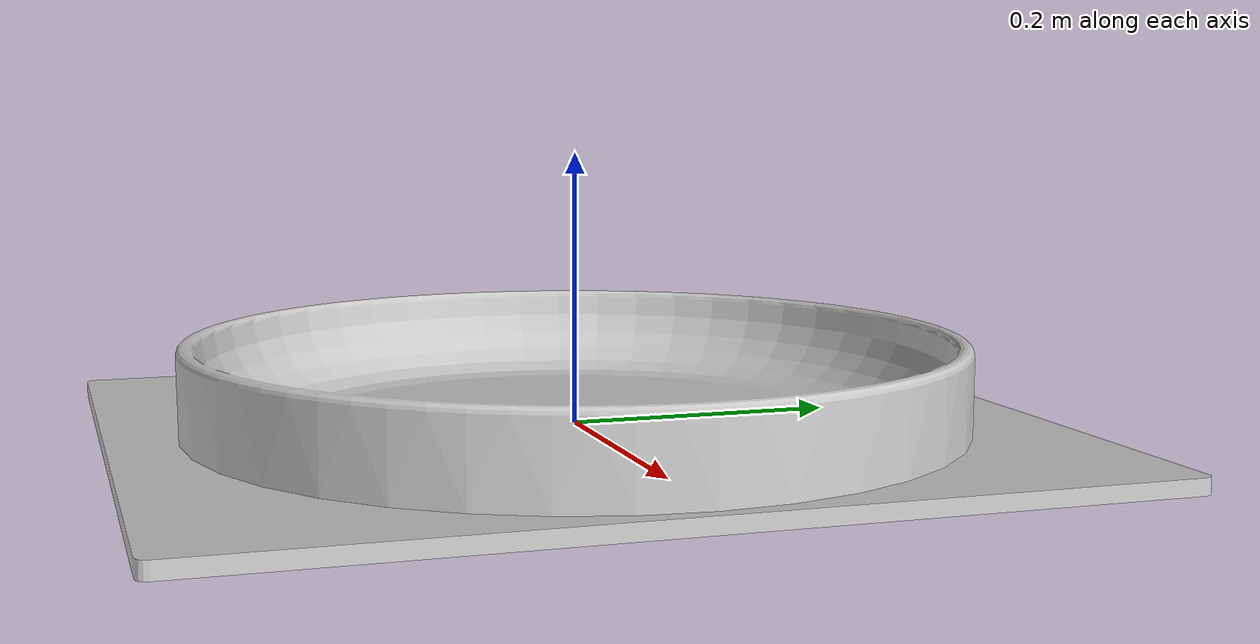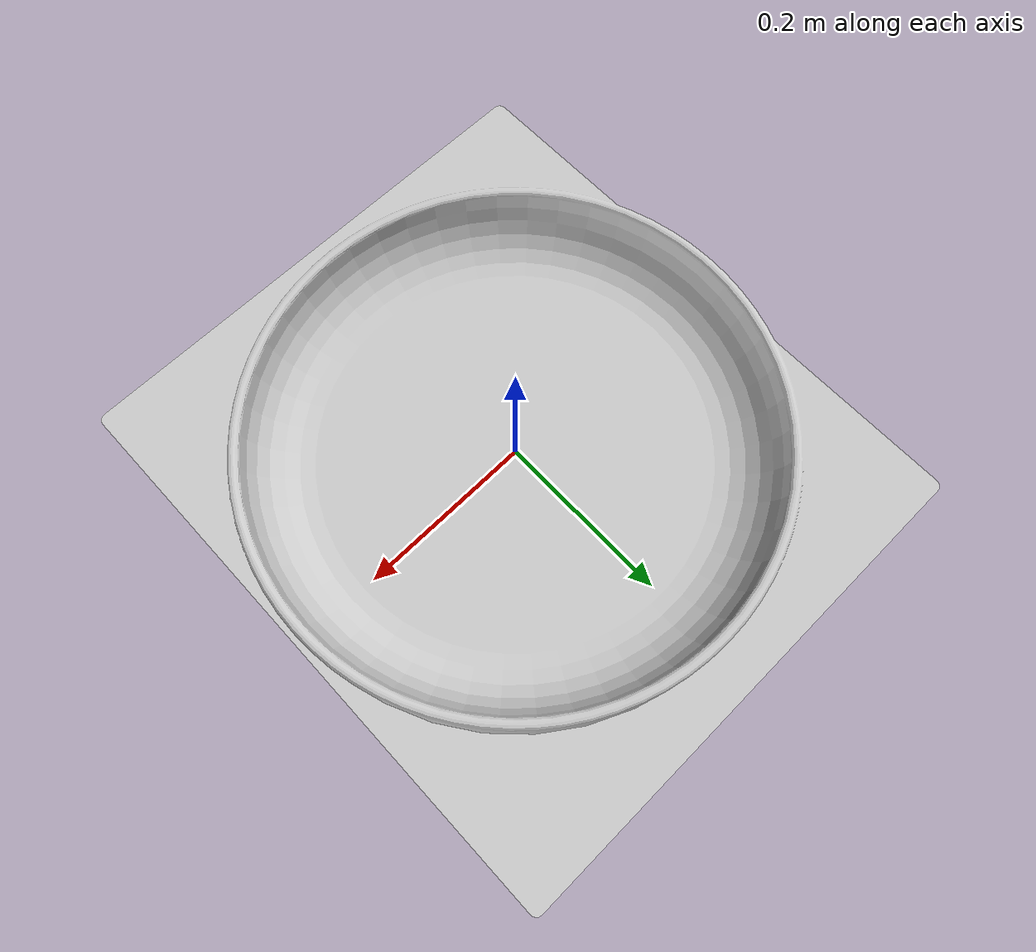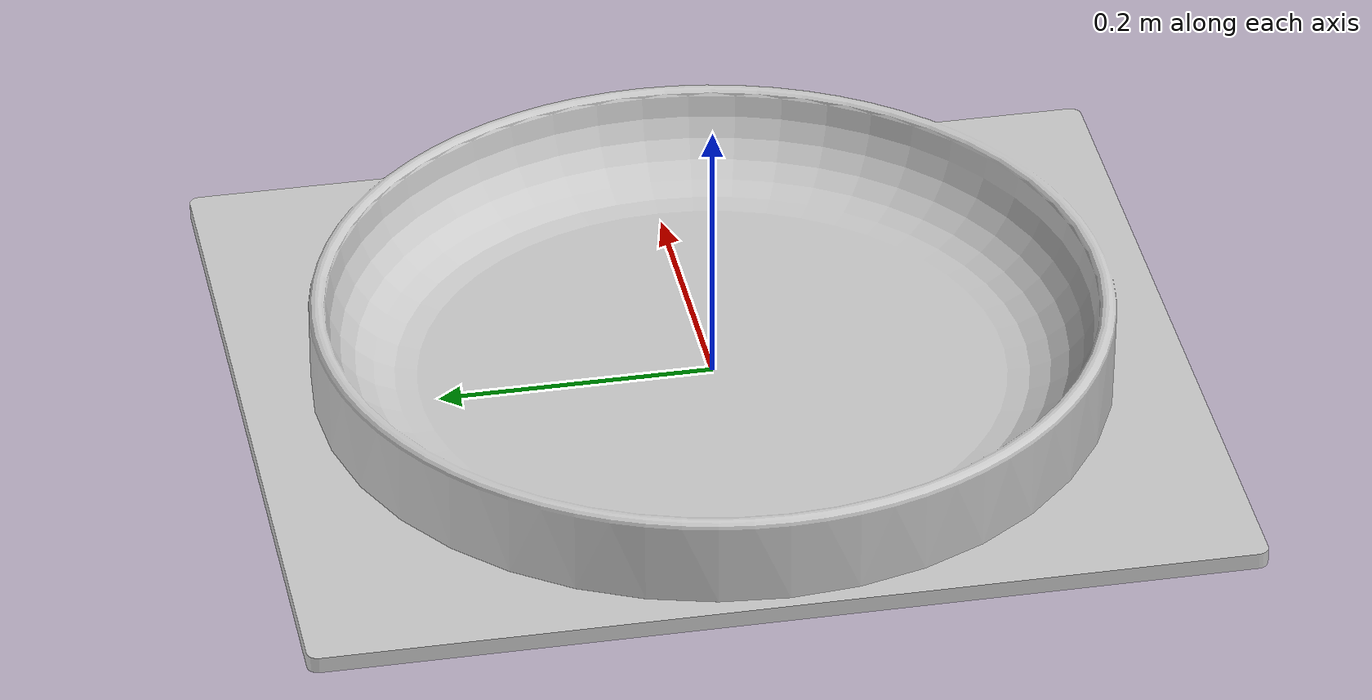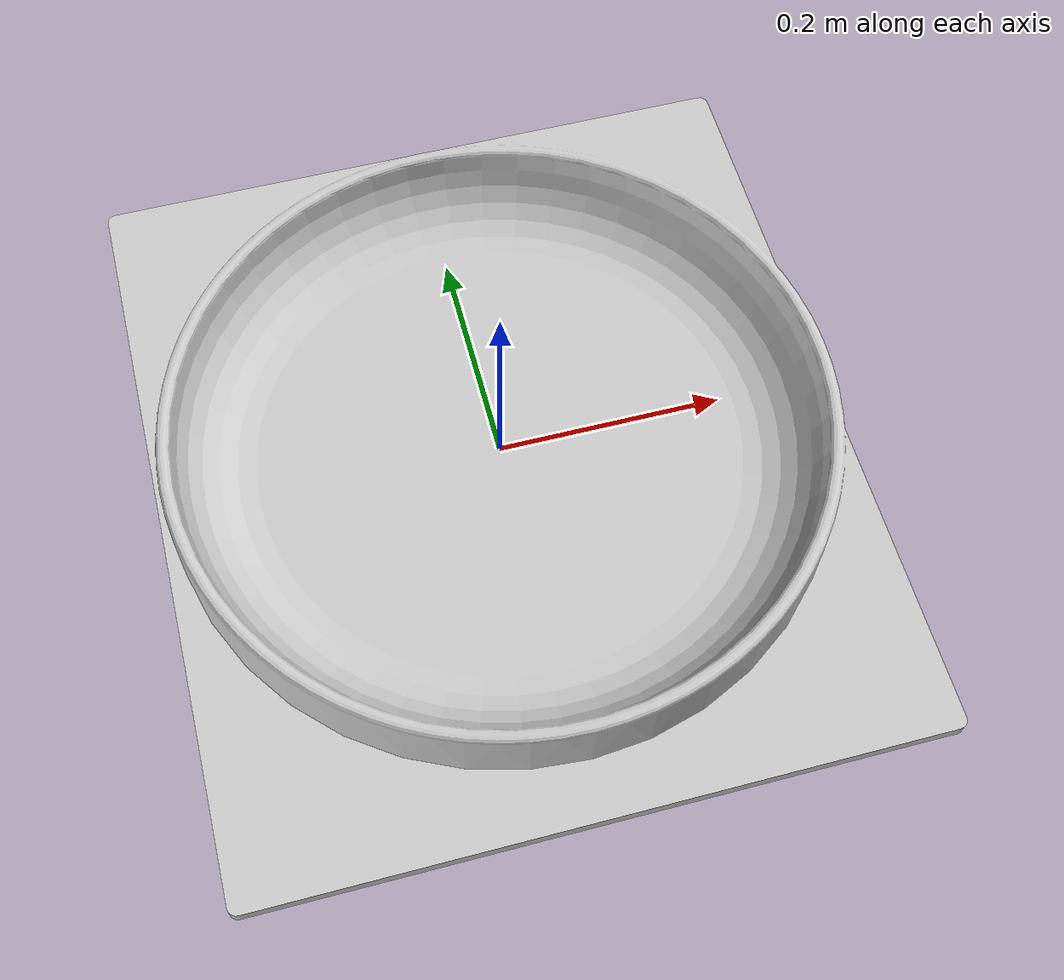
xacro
<?xml version="1.0" ?>
<robot name="stage" xmlns:xacro="https://ei.is.tuebingen.mpg.de/xacro">

    <xacro:include filename="macros.xacro" />

    <material name="stage_material">
        <color rgba="0.8 0.8 0.8 1.0" />
    </material>

    <!-- Meshes -->
    <xacro:property name="mesh_dir" value="package://robot_properties_fingers/meshes"/>

    <xacro:property name="stage_mesh" value="${mesh_dir}/Stage_simplified.stl"/>

    <!-- add the "stage" -->
    <link name="stage_link">
        <xacro:add_geometry
            rpy="0 0 0"
            xyz="0 0 0"
            mesh_file="${stage_mesh}"
            material="stage_material" />
        <xacro:add_inertia
            length_x="0.3"
            length_y="0.3"
            length_z="0.05"
            mass="1"
            com="0 0 0"/>
    </link>

</robot>

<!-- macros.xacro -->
<!-- Some macros for convenience -->
<robot xmlns:xacro="https://ei.is.tuebingen.mpg.de/xacro">

    <xacro:macro name="add_geometry"
        params="rpy xyz mesh_file material mesh_scale:='1'">
        <visual>
            <origin rpy="${rpy}" xyz="${xyz}"/>
            <geometry>
                <mesh scale="${mesh_scale} ${mesh_scale} ${mesh_scale}" filename="${mesh_file}"/>
            </geometry>
            <material name="${material}" />
        </visual>
        <collision>
            <origin rpy="${rpy}" xyz="${xyz}"/>
            <geometry>
                <mesh scale="${mesh_scale} ${mesh_scale} ${mesh_scale}" filename="${mesh_file}"/>
            </geometry>
        </collision>
    </xacro:macro>

    <xacro:macro name="add_inertia" params="length_x length_y length_z mass com">
        <inertial>
            <origin rpy="0 0 0" xyz="${com}"/>
            <mass value="${mass}"/>
            <inertia
                    ixx="${1./12. * mass * (length_y*length_y + length_z*length_z)}"
                    iyy="${1./12. * mass * (length_x*length_x + length_z*length_z)}"
                    izz="${1./12. * mass * (length_x*length_x + length_y*length_y)}"
                    ixy="0" ixz="0" iyz="0"/>
        </inertial>
    </xacro:macro>

</robot>
